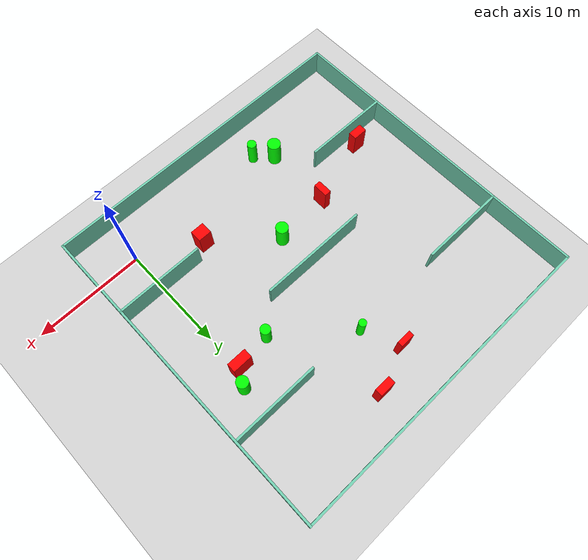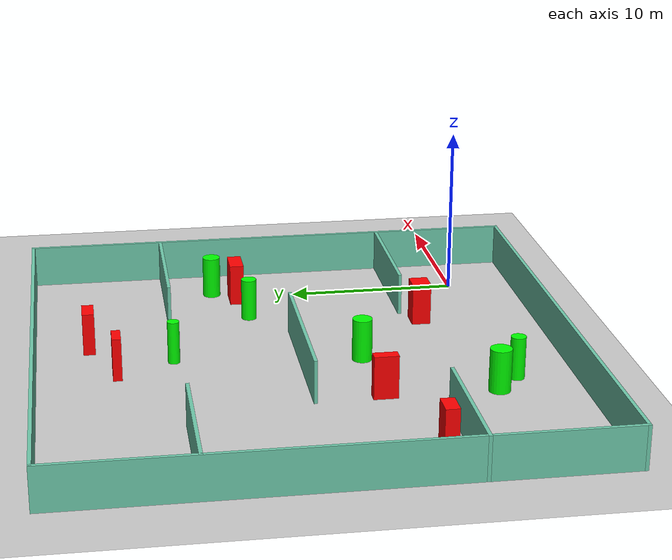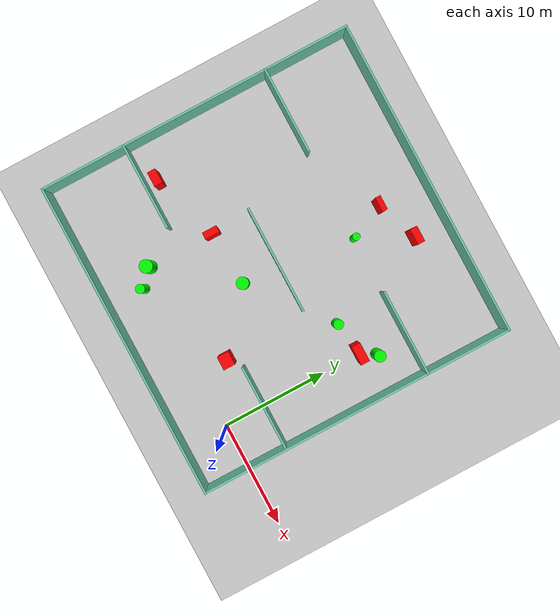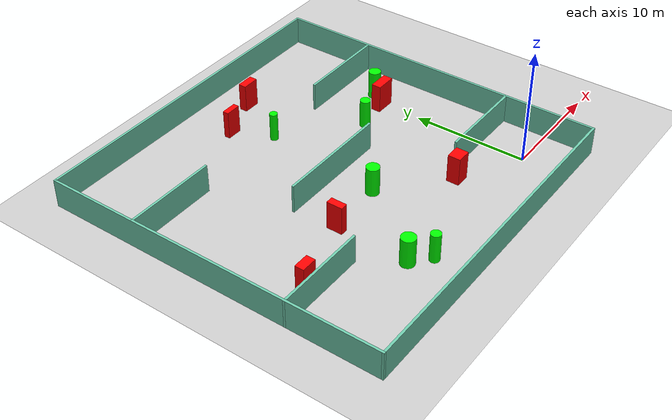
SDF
<sdf version="1.7">
 <world name="default">
  <light name="sun" type="directional">
   <pose>0 0 10 0 -0 0</pose>
   <diffuse>0.8 0.8 0.8 1</diffuse>
   <specular>0.2 0.2 0.2 1</specular>
   <attenuation>
    <range>1000</range>
    <constant>0.9</constant>
    <linear>0.01</linear>
    <quadratic>0.001</quadratic>
   </attenuation>
   <direction>-0.5 0.1 -0.9</direction>
   <spot><inner_angle>0</inner_angle><outer_angle>0</outer_angle><falloff>0</falloff></spot>
  </light>
  <model name="ground_plane">
   <static>1</static>
   <link name="link">
    <collision name="collision">
     <geometry><plane><normal>0 0 1</normal><size>100 100</size></plane></geometry>
     <surface>
      <contact><collide_bitmask>65535</collide_bitmask></contact>
      <friction><ode><mu>100</mu><mu2>50</mu2></ode></friction>
     </surface>
    </collision>
    <visual name="visual">
     <cast_shadows>0</cast_shadows>
     <geometry><plane><normal>0 0 1</normal><size>100 100</size></plane></geometry>
     <material>
      <script><uri>file://media/materials/scripts/gazebo.material</uri><name>Gazebo/Grey</name></script>
     </material>
    </visual>
   </link>
  </model>
  <gravity>0 0 -9.8</gravity>
  <magnetic_field>6e-06 2.3e-05 -4.2e-05</magnetic_field>
  <atmosphere type="adiabatic"/>
  <physics type="ode">
   <max_step_size>0.001</max_step_size>
   <real_time_factor>1</real_time_factor>
   <real_time_update_rate>1000</real_time_update_rate>
  </physics>
  <scene><ambient>0.4 0.4 0.4 1</ambient><background>0.7 0.7 0.7 1</background><shadows>1</shadows></scene>
  <spherical_coordinates>
   <surface_model>EARTH_WGS84</surface_model>
   <latitude_deg>0</latitude_deg>
   <longitude_deg>0</longitude_deg>
   <elevation>0</elevation>
   <heading_deg>0</heading_deg>
  </spherical_coordinates>
  <model name="my_base_walls">
   <link name="Wall_10">
    <collision name="Wall_10_Collision">
     <geometry><box><size>8.2 0.2 2.5</size></box></geometry>
     <pose>0 0 1.25 0 -0 0</pose>
    </collision>
    <visual name="Wall_10_Visual">
     <pose>0 0 1.25 0 -0 0</pose>
     <geometry><box><size>8.2 0.2 2.5</size></box></geometry>
     <material>
      <script><uri>file://media/materials/scripts/gazebo.material</uri><name>Gazebo/Grey</name></script>
      <ambient>0.435294 0.796078 0.67451 1</ambient>
     </material>
     <meta><layer>0</layer></meta>
    </visual>
    <pose>-11 -7 0 0 -0 0</pose>
   </link>
   <link name="Wall_12">
    <collision name="Wall_12_Collision">
     <geometry><box><size>8.2 0.2 2.5</size></box></geometry>
     <pose>0 0 1.25 0 -0 0</pose>
    </collision>
    <visual name="Wall_12_Visual">
     <pose>0 0 1.25 0 -0 0</pose>
     <geometry><box><size>8.2 0.2 2.5</size></box></geometry>
     <material>
      <script><uri>file://media/materials/scripts/gazebo.material</uri><name>Gazebo/Grey</name></script>
      <ambient>0.435294 0.796078 0.67451 1</ambient>
     </material>
     <meta><layer>0</layer></meta>
    </visual>
    <pose>-11 7 0 0 -0 0</pose>
   </link>
   <link name="Wall_14">
    <collision name="Wall_14_Collision">
     <geometry><box><size>8.2 0.2 2.5</size></box></geometry>
     <pose>0 0 1.25 0 -0 0</pose>
    </collision>
    <visual name="Wall_14_Visual">
     <pose>0 0 1.25 0 -0 0</pose>
     <geometry><box><size>8.2 0.2 2.5</size></box></geometry>
     <material>
      <script><uri>file://media/materials/scripts/gazebo.material</uri><name>Gazebo/Grey</name></script>
      <ambient>0.435294 0.796078 0.67451 1</ambient>
     </material>
     <meta><layer>0</layer></meta>
    </visual>
    <pose>11 7 0 0 -0 3.14159</pose>
   </link>
   <link name="Wall_16">
    <collision name="Wall_16_Collision">
     <geometry><box><size>10.2 0.2 2.5</size></box></geometry>
     <pose>0 0 1.25 0 -0 0</pose>
    </collision>
    <visual name="Wall_16_Visual">
     <pose>0 0 1.25 0 -0 0</pose>
     <geometry><box><size>10.2 0.2 2.5</size></box></geometry>
     <material>
      <script><uri>file://media/materials/scripts/gazebo.material</uri><name>Gazebo/Grey</name></script>
      <ambient>0.435294 0.796078 0.67451 1</ambient>
     </material>
     <meta><layer>0</layer></meta>
    </visual>
    <pose>0 0 0 0 -0 3.14159</pose>
   </link>
   <link name="Wall_2">
    <collision name="Wall_2_Collision">
     <geometry><box><size>30.2 0.2 2.5</size></box></geometry>
     <pose>0 0 1.25 0 -0 0</pose>
    </collision>
    <visual name="Wall_2_Visual">
     <pose>0 0 1.25 0 -0 0</pose>
     <geometry><box><size>30.2 0.2 2.5</size></box></geometry>
     <material>
      <script><uri>file://media/materials/scripts/gazebo.material</uri><name>Gazebo/Grey</name></script>
      <ambient>0.435294 0.796078 0.67451 1</ambient>
     </material>
     <meta><layer>0</layer></meta>
    </visual>
    <pose>0 -15 0 0 -0 3.14159</pose>
   </link>
   <link name="Wall_3">
    <collision name="Wall_3_Collision">
     <geometry><box><size>30.2 0.2 2.5</size></box></geometry>
     <pose>0 0 1.25 0 -0 0</pose>
    </collision>
    <visual name="Wall_3_Visual">
     <pose>0 0 1.25 0 -0 0</pose>
     <geometry><box><size>30.2 0.2 2.5</size></box></geometry>
     <material>
      <script><uri>file://media/materials/scripts/gazebo.material</uri><name>Gazebo/Grey</name></script>
      <ambient>0.435294 0.796078 0.67451 1</ambient>
     </material>
     <meta><layer>0</layer></meta>
    </visual>
    <pose>-15 0 0 0 -0 1.5708</pose>
   </link>
   <link name="Wall_4">
    <collision name="Wall_4_Collision">
     <geometry><box><size>30.2 0.2 2.5</size></box></geometry>
     <pose>0 0 1.25 0 -0 0</pose>
    </collision>
    <visual name="Wall_4_Visual">
     <pose>0 0 1.25 0 -0 0</pose>
     <geometry><box><size>30.2 0.2 2.5</size></box></geometry>
     <material>
      <script><uri>file://media/materials/scripts/gazebo.material</uri><name>Gazebo/Grey</name></script>
      <ambient>0.435294 0.796078 0.67451 1</ambient>
     </material>
     <meta><layer>0</layer></meta>
    </visual>
    <pose>0 15 0 0 -0 0</pose>
   </link>
   <link name="Wall_6">
    <collision name="Wall_6_Collision">
     <geometry><box><size>30.2 0.2 2.5</size></box></geometry>
     <pose>0 0 1.25 0 -0 0</pose>
    </collision>
    <visual name="Wall_6_Visual">
     <pose>0 0 1.25 0 -0 0</pose>
     <geometry><box><size>30.2 0.2 2.5</size></box></geometry>
     <material>
      <script><uri>file://media/materials/scripts/gazebo.material</uri><name>Gazebo/Grey</name></script>
      <ambient>0.435294 0.796078 0.67451 1</ambient>
     </material>
     <meta><layer>0</layer></meta>
    </visual>
    <pose>15 0 0 0 -0 1.5708</pose>
   </link>
   <link name="Wall_8">
    <collision name="Wall_8_Collision">
     <geometry><box><size>8.2 0.2 2.5</size></box></geometry>
     <pose>0 0 1.25 0 -0 0</pose>
    </collision>
    <visual name="Wall_8_Visual">
     <pose>0 0 1.25 0 -0 0</pose>
     <geometry><box><size>8.2 0.2 2.5</size></box></geometry>
     <material>
      <script><uri>file://media/materials/scripts/gazebo.material</uri><name>Gazebo/Grey</name></script>
      <ambient>0.435294 0.796078 0.67451 1</ambient>
     </material>
     <meta><layer>0</layer></meta>
    </visual>
    <pose>11 -7 0 0 -0 3.14159</pose>
   </link>
   <static>1</static>
   <pose>-11 11 0 0 -0 0</pose>
  </model>
  <model name="cylinder1">
   <static>1</static>
   <link name="link">
    <inertial>
     <mass>1</mass>
     <inertia><ixx>0.5</ixx><ixy>0</ixy><ixz>0</ixz><iyy>0.5</iyy><iyz>0</iyz><izz>1</izz></inertia>
    </inertial>
    <collision name="collision">
     <geometry><cylinder><radius>0.45471813429283203</radius><length>2.5</length></cylinder></geometry>
    </collision>
    <visual name="visual">
     <geometry><cylinder><radius>0.45471813429283203</radius><length>2.5</length></cylinder></geometry>
     <material>
      <ambient>0 1 0 1</ambient>
      <diffuse>0 1 0 1</diffuse>
      <specular>0.1 0.1 0.1 1</specular>
      <emissive>0 0 0 0</emissive>
     </material>
    </visual>
   </link>
   <pose>-3.4358656835892702 13.15633243218619 1.25 0 0 0</pose>
  </model>
  <model name="cylinder2">
   <static>1</static>
   <link name="link">
    <inertial>
     <mass>1</mass>
     <inertia><ixx>0.5</ixx><ixy>0</ixy><ixz>0</ixz><iyy>0.5</iyy><iyz>0</iyz><izz>1</izz></inertia>
    </inertial>
    <collision name="collision">
     <geometry><cylinder><radius>0.3445475212103522</radius><length>2.5</length></cylinder></geometry>
    </collision>
    <visual name="visual">
     <geometry><cylinder><radius>0.3445475212103522</radius><length>2.5</length></cylinder></geometry>
     <material>
      <ambient>0 1 0 1</ambient>
      <diffuse>0 1 0 1</diffuse>
      <specular>0.1 0.1 0.1 1</specular>
      <emissive>0 0 0 0</emissive>
     </material>
    </visual>
   </link>
   <pose>-9.442940794253714 18.133284128168686 1.25 0 0 0</pose>
  </model>
  <model name="cylinder3">
   <static>1</static>
   <link name="link">
    <inertial>
     <mass>1</mass>
     <inertia><ixx>0.5</ixx><ixy>0</ixy><ixz>0</ixz><iyy>0.5</iyy><iyz>0</iyz><izz>1</izz></inertia>
    </inertial>
    <collision name="collision">
     <geometry><cylinder><radius>0.5331022274022511</radius><length>2.5</length></cylinder></geometry>
    </collision>
    <visual name="visual">
     <geometry><cylinder><radius>0.5331022274022511</radius><length>2.5</length></cylinder></geometry>
     <material>
      <ambient>0 1 0 1</ambient>
      <diffuse>0 1 0 1</diffuse>
      <specular>0.1 0.1 0.1 1</specular>
      <emissive>0 0 0 0</emissive>
     </material>
    </visual>
   </link>
   <pose>0.7020633212987519 15.035353456824033 1.25 0 0 0</pose>
  </model>
  <model name="cylinder4">
   <static>1</static>
   <link name="link">
    <inertial>
     <mass>1</mass>
     <inertia><ixx>0.5</ixx><ixy>0</ixy><ixz>0</ixz><iyy>0.5</iyy><iyz>0</iyz><izz>1</izz></inertia>
    </inertial>
    <collision name="collision">
     <geometry><cylinder><radius>0.43095113853604833</radius><length>2.5</length></cylinder></geometry>
    </collision>
    <visual name="visual">
     <geometry><cylinder><radius>0.43095113853604833</radius><length>2.5</length></cylinder></geometry>
     <material>
      <ambient>0 1 0 1</ambient>
      <diffuse>0 1 0 1</diffuse>
      <specular>0.1 0.1 0.1 1</specular>
      <emissive>0 0 0 0</emissive>
     </material>
    </visual>
   </link>
   <pose>-14.342725203096343 -0.5910874644108586 1.25 0 0 0</pose>
  </model>
  <model name="cylinder5">
   <static>1</static>
   <link name="link">
    <inertial>
     <mass>1</mass>
     <inertia><ixx>0.5</ixx><ixy>0</ixy><ixz>0</ixz><iyy>0.5</iyy><iyz>0</iyz><izz>1</izz></inertia>
    </inertial>
    <collision name="collision">
     <geometry><cylinder><radius>0.6145899618508981</radius><length>2.5</length></cylinder></geometry>
    </collision>
    <visual name="visual">
     <geometry><cylinder><radius>0.6145899618508981</radius><length>2.5</length></cylinder></geometry>
     <material>
      <ambient>0 1 0 1</ambient>
      <diffuse>0 1 0 1</diffuse>
      <specular>0.1 0.1 0.1 1</specular>
      <emissive>0 0 0 0</emissive>
     </material>
    </visual>
   </link>
   <pose>-15.830289097510825 0.7791358235561705 1.25 0 0 0</pose>
  </model>
  <model name="cylinder6">
   <static>1</static>
   <link name="link">
    <inertial>
     <mass>1</mass>
     <inertia><ixx>0.5</ixx><ixy>0</ixy><ixz>0</ixz><iyy>0.5</iyy><iyz>0</iyz><izz>1</izz></inertia>
    </inertial>
    <collision name="collision">
     <geometry><cylinder><radius>0.573503154936899</radius><length>2.5</length></cylinder></geometry>
    </collision>
    <visual name="visual">
     <geometry><cylinder><radius>0.573503154936899</radius><length>2.5</length></cylinder></geometry>
     <material>
      <ambient>0 1 0 1</ambient>
      <diffuse>0 1 0 1</diffuse>
      <specular>0.1 0.1 0.1 1</specular>
      <emissive>0 0 0 0</emissive>
     </material>
    </visual>
   </link>
   <pose>-10.566069190498185 7.480617222236495 1.25 0 0 0</pose>
  </model>
  <model name="box1">
   <static>1</static>
   <link name="link">
    <inertial>
     <mass>1</mass>
     <inertia><ixx>0.083</ixx><ixy>0</ixy><ixz>0</ixz><iyy>0.083</iyy><iyz>0</iyz><izz>0.083</izz></inertia>
    </inertial>
    <collision name="collision">
     <geometry><box><size>1.3624860637476544 0.5115770781226556 2.5</size></box></geometry>
    </collision>
    <visual name="visual">
     <geometry><box><size>1.3624860637476544 0.5115770781226556 2.5</size></box></geometry>
     <material>
      <ambient>1 0 0 1</ambient>
      <diffuse>1 0 0 1</diffuse>
      <specular>0.1 0.1 0.1 1</specular>
      <emissive>0 0 0 0</emissive>
     </material>
    </visual>
    <sensor name="my_contact" type="contact">
     <contact><collision>box_collision</collision><topic>__default_topic__</topic></contact>
    </sensor>
   </link>
   <pose>-10.958341804462297 21.40308669098529 1.25 0 0 0</pose>
  </model>
  <model name="box2">
   <static>1</static>
   <link name="link">
    <inertial>
     <mass>1</mass>
     <inertia><ixx>0.083</ixx><ixy>0</ixy><ixz>0</ixz><iyy>0.083</iyy><iyz>0</iyz><izz>0.083</izz></inertia>
    </inertial>
    <collision name="collision">
     <geometry><box><size>1.4979922662487744 0.6860136078502486 2.5</size></box></geometry>
    </collision>
    <visual name="visual">
     <geometry><box><size>1.4979922662487744 0.6860136078502486 2.5</size></box></geometry>
     <material>
      <ambient>1 0 0 1</ambient>
      <diffuse>1 0 0 1</diffuse>
      <specular>0.1 0.1 0.1 1</specular>
      <emissive>0 0 0 0</emissive>
     </material>
    </visual>
    <sensor name="my_contact" type="contact">
     <contact><collision>box_collision</collision><topic>__default_topic__</topic></contact>
    </sensor>
   </link>
   <pose>-7.030813856640625 22.86529832651104 1.25 0 0 0</pose>
  </model>
  <model name="box3">
   <static>1</static>
   <link name="link">
    <inertial>
     <mass>1</mass>
     <inertia><ixx>0.083</ixx><ixy>0</ixy><ixz>0</ixz><iyy>0.083</iyy><iyz>0</iyz><izz>0.083</izz></inertia>
    </inertial>
    <collision name="collision">
     <geometry><box><size>0.6364696994095851 1.3856459181818817 2.5</size></box></geometry>
    </collision>
    <visual name="visual">
     <geometry><box><size>0.6364696994095851 1.3856459181818817 2.5</size></box></geometry>
     <material>
      <ambient>1 0 0 1</ambient>
      <diffuse>1 0 0 1</diffuse>
      <specular>0.1 0.1 0.1 1</specular>
      <emissive>0 0 0 0</emissive>
     </material>
    </visual>
    <sensor name="my_contact" type="contact">
     <contact><collision>box_collision</collision><topic>__default_topic__</topic></contact>
    </sensor>
   </link>
   <pose>-15.759068807958895 7.141052821638485 1.25 0 0 0</pose>
  </model>
  <model name="box4">
   <static>1</static>
   <link name="link">
    <inertial>
     <mass>1</mass>
     <inertia><ixx>0.083</ixx><ixy>0</ixy><ixz>0</ixz><iyy>0.083</iyy><iyz>0</iyz><izz>0.083</izz></inertia>
    </inertial>
    <collision name="collision">
     <geometry><box><size>1.3608580269191957 0.7812432188962879 2.5</size></box></geometry>
    </collision>
    <visual name="visual">
     <geometry><box><size>1.3608580269191957 0.7812432188962879 2.5</size></box></geometry>
     <material>
      <ambient>1 0 0 1</ambient>
      <diffuse>1 0 0 1</diffuse>
      <specular>0.1 0.1 0.1 1</specular>
      <emissive>0 0 0 0</emissive>
     </material>
    </visual>
    <sensor name="my_contact" type="contact">
     <contact><collision>box_collision</collision><topic>__default_topic__</topic></contact>
    </sensor>
   </link>
   <pose>-22.266820653579465 5.113730301559089 1.25 0 0 0</pose>
  </model>
  <model name="box5">
   <static>1</static>
   <link name="link">
    <inertial>
     <mass>1</mass>
     <inertia><ixx>0.083</ixx><ixy>0</ixy><ixz>0</ixz><iyy>0.083</iyy><iyz>0</iyz><izz>0.083</izz></inertia>
    </inertial>
    <collision name="collision">
     <geometry><box><size>1.7926518604390373 0.8368427550596396 2.5</size></box></geometry>
    </collision>
    <visual name="visual">
     <geometry><box><size>1.7926518604390373 0.8368427550596396 2.5</size></box></geometry>
     <material>
      <ambient>1 0 0 1</ambient>
      <diffuse>1 0 0 1</diffuse>
      <specular>0.1 0.1 0.1 1</specular>
      <emissive>0 0 0 0</emissive>
     </material>
    </visual>
    <sensor name="my_contact" type="contact">
     <contact><collision>box_collision</collision><topic>__default_topic__</topic></contact>
    </sensor>
   </link>
   <pose>-0.2693413211579241 13.631290102652532 1.25 0 0 0</pose>
  </model>
  <model name="box6">
   <static>1</static>
   <link name="link">
    <inertial>
     <mass>1</mass>
     <inertia><ixx>0.083</ixx><ixy>0</ixy><ixz>0</ixz><iyy>0.083</iyy><iyz>0</iyz><izz>0.083</izz></inertia>
    </inertial>
    <collision name="collision">
     <geometry><box><size>1.2785383527823249 1.1027833085604553 2.5</size></box></geometry>
    </collision>
    <visual name="visual">
     <geometry><box><size>1.2785383527823249 1.1027833085604553 2.5</size></box></geometry>
     <material>
      <ambient>1 0 0 1</ambient>
      <diffuse>1 0 0 1</diffuse>
      <specular>0.1 0.1 0.1 1</specular>
      <emissive>0 0 0 0</emissive>
     </material>
    </visual>
    <sensor name="my_contact" type="contact">
     <contact><collision>box_collision</collision><topic>__default_topic__</topic></contact>
    </sensor>
   </link>
   <pose>-5.288662342337259 3.0323186300532754 1.25 0 0 0</pose>
  </model>
 </world>
</sdf>
